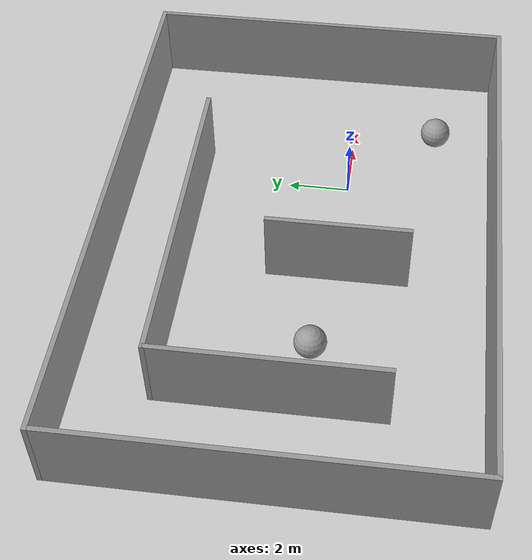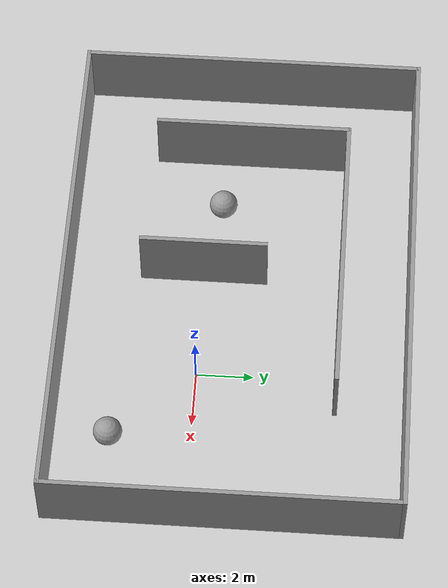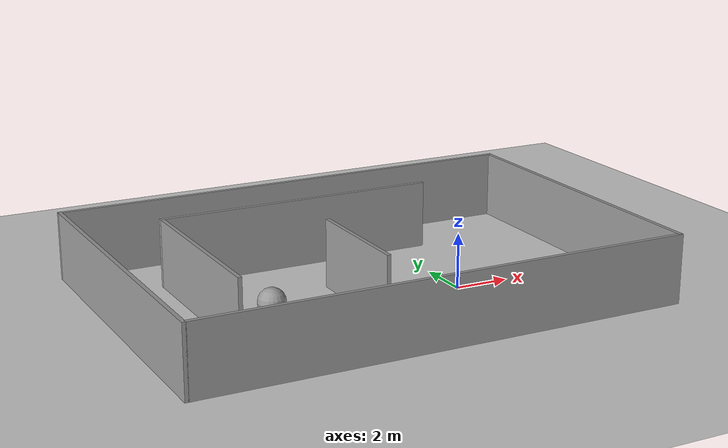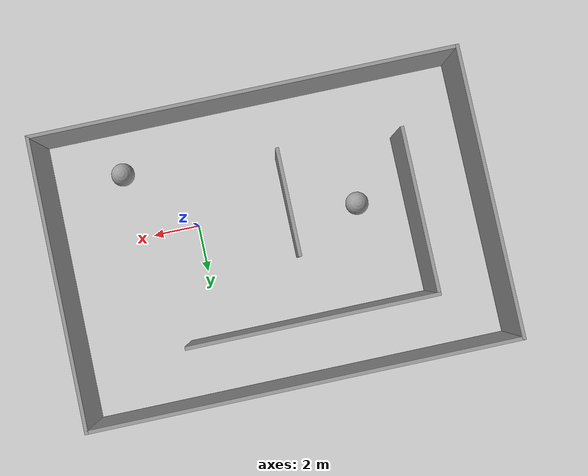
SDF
<sdf version="1.6">
 <world name="default">
  <model name="ground_plane">
   <static>1</static>
   <link name="link">
    <collision name="collision">
     <geometry><plane><normal>0 0 1</normal><size>100 100</size></plane></geometry>
     <surface>
      <contact><collide_bitmask>65535</collide_bitmask></contact>
      <friction><ode><mu>100</mu><mu2>50</mu2></ode></friction>
     </surface>
    </collision>
    <visual name="visual">
     <cast_shadows>0</cast_shadows>
     <geometry><plane><normal>0 0 1</normal><size>100 100</size></plane></geometry>
     <material>
      <script><uri>file://media/materials/scripts/gazebo.material</uri><name>Gazebo/Grey</name></script>
     </material>
    </visual>
   </link>
  </model>
  <light name="sun" type="directional">
   <pose>0 0 10 0 -0 0</pose>
   <diffuse>0.8 0.8 0.8 1</diffuse>
   <specular>0.2 0.2 0.2 1</specular>
   <attenuation>
    <range>1000</range>
    <constant>0.9</constant>
    <linear>0.01</linear>
    <quadratic>0.001</quadratic>
   </attenuation>
   <direction>-0.5 0.1 -0.9</direction>
  </light>
  <gravity>0 0 -9.8</gravity>
  <magnetic_field>6e-06 2.3e-05 -4.2e-05</magnetic_field>
  <atmosphere type="adiabatic"/>
  <physics name="default_physics" default="0" type="ode">
   <max_step_size>0.001</max_step_size>
   <real_time_factor>1</real_time_factor>
   <real_time_update_rate>1000</real_time_update_rate>
  </physics>
  <scene><ambient>0.4 0.4 0.4 1</ambient><background>0.7 0.7 0.7 1</background><shadows>1</shadows></scene>
  <audio><device>default</device></audio>
  <spherical_coordinates>
   <surface_model>EARTH_WGS84</surface_model>
   <latitude_deg>0</latitude_deg>
   <longitude_deg>0</longitude_deg>
   <elevation>0</elevation>
   <heading_deg>0</heading_deg>
  </spherical_coordinates>
  <model name="maze">
   <pose>-3.09636 1.26463 0 0 -0 0</pose>
   <link name="Wall_25">
    <collision name="Wall_25_Collision">
     <geometry><box><size>12.25 0.15 2.5</size></box></geometry>
     <pose>0 0 1.25 0 -0 0</pose>
    </collision>
    <visual name="Wall_25_Visual">
     <pose>0 0 1.25 0 -0 0</pose>
     <geometry><box><size>12.25 0.15 2.5</size></box></geometry>
     <material>
      <script><uri>file://media/materials/scripts/gazebo.material</uri><name>Gazebo/Grey</name></script>
      <ambient>1 1 1 1</ambient>
     </material>
     <meta><layer>0</layer></meta>
    </visual>
    <pose>-8.925 -0 0 0 -0 -1.5708</pose>
   </link>
   <link name="Wall_26">
    <collision name="Wall_26_Collision">
     <geometry><box><size>18 0.15 2.5</size></box></geometry>
     <pose>0 0 1.25 0 -0 0</pose>
    </collision>
    <visual name="Wall_26_Visual">
     <pose>0 0 1.25 0 -0 0</pose>
     <geometry><box><size>18 0.15 2.5</size></box></geometry>
     <material>
      <script><uri>file://media/materials/scripts/gazebo.material</uri><name>Gazebo/Grey</name></script>
      <ambient>1 1 1 1</ambient>
     </material>
     <meta><layer>0</layer></meta>
    </visual>
    <pose>-0 -6.05 0 0 -0 0</pose>
   </link>
   <link name="Wall_27">
    <collision name="Wall_27_Collision">
     <geometry><box><size>12.25 0.15 2.5</size></box></geometry>
     <pose>0 0 1.25 0 -0 0</pose>
    </collision>
    <visual name="Wall_27_Visual">
     <pose>0 0 1.25 0 -0 0</pose>
     <geometry><box><size>12.25 0.15 2.5</size></box></geometry>
     <material>
      <script><uri>file://media/materials/scripts/gazebo.material</uri><name>Gazebo/Grey</name></script>
      <ambient>1 1 1 1</ambient>
     </material>
     <meta><layer>0</layer></meta>
    </visual>
    <pose>8.925 -0 0 0 -0 1.5708</pose>
   </link>
   <link name="Wall_28">
    <collision name="Wall_28_Collision">
     <geometry><box><size>18 0.15 2.5</size></box></geometry>
     <pose>0 0 1.25 0 -0 0</pose>
    </collision>
    <visual name="Wall_28_Visual">
     <pose>0 0 1.25 0 -0 0</pose>
     <geometry><box><size>18 0.15 2.5</size></box></geometry>
     <material>
      <script><uri>file://media/materials/scripts/gazebo.material</uri><name>Gazebo/Grey</name></script>
      <ambient>1 1 1 1</ambient>
     </material>
     <meta><layer>0</layer></meta>
    </visual>
    <pose>-0 6.05 0 0 -0 3.14159</pose>
   </link>
   <link name="Wall_30">
    <collision name="Wall_30_Collision">
     <geometry><box><size>7 0.15 2.5</size></box></geometry>
     <pose>0 0 1.25 0 -0 0</pose>
    </collision>
    <visual name="Wall_30_Visual">
     <pose>0 0 1.25 0 -0 0</pose>
     <geometry><box><size>7 0.15 2.5</size></box></geometry>
     <material>
      <script><uri>file://media/materials/scripts/gazebo.material</uri><name>Gazebo/Grey</name></script>
      <ambient>1 1 1 1</ambient>
     </material>
     <meta><layer>0</layer></meta>
    </visual>
    <pose>-6.00516 0.197665 0 0 -0 -1.5708</pose>
   </link>
   <link name="Wall_40">
    <collision name="Wall_40_Collision">
     <geometry><box><size>10.5 0.15 2.5</size></box></geometry>
     <pose>0 0 1.25 0 -0 0</pose>
    </collision>
    <visual name="Wall_40_Visual">
     <pose>0 0 1.25 0 -0 0</pose>
     <geometry><box><size>10.5 0.15 2.5</size></box></geometry>
     <material>
      <script><uri>file://media/materials/scripts/gazebo.material</uri><name>Gazebo/Grey</name></script>
      <ambient>1 1 1 1</ambient>
     </material>
     <meta><layer>0</layer></meta>
    </visual>
    <pose>-0.830163 3.62267 0 0 -0 0</pose>
   </link>
   <link name="Wall_44">
    <collision name="Wall_44_Collision">
     <geometry><box><size>4.5 0.15 2.5</size></box></geometry>
     <pose>0 0 1.25 0 -0 0</pose>
    </collision>
    <visual name="Wall_44_Visual">
     <pose>0 0 1.25 0 -0 0</pose>
     <geometry><box><size>4.5 0.15 2.5</size></box></geometry>
     <material>
      <script><uri>file://media/materials/scripts/gazebo.material</uri><name>Gazebo/Grey</name></script>
      <ambient>1 1 1 1</ambient>
     </material>
     <meta><layer>0</layer></meta>
    </visual>
    <pose>-0.869063 -1.2611 0 0 -0 -1.5708</pose>
   </link>
   <static>1</static>
  </model>
  <model name="unit_sphere">
   <pose>2.70542 -2.82103 0.5 0 -0 0</pose>
   <link name="link">
    <inertial>
     <mass>1</mass>
     <inertia><ixx>0.1</ixx><ixy>0</ixy><ixz>0</ixz><iyy>0.1</iyy><iyz>0</iyz><izz>0.1</izz></inertia>
    </inertial>
    <collision name="collision"><geometry><sphere><radius>0.5</radius></sphere></geometry></collision>
    <visual name="visual">
     <geometry><sphere><radius>0.5</radius></sphere></geometry>
     <material>
      <script><name>Gazebo/Grey</name><uri>file://media/materials/scripts/gazebo.material</uri></script>
     </material>
    </visual>
   </link>
  </model>
  <model name="unit_sphere_0">
   <pose>-6.92124 0.502859 0.5 0 -0 0</pose>
   <link name="link">
    <inertial>
     <mass>1</mass>
     <inertia><ixx>0.1</ixx><ixy>0</ixy><ixz>0</ixz><iyy>0.1</iyy><iyz>0</iyz><izz>0.1</izz></inertia>
    </inertial>
    <collision name="collision"><geometry><sphere><radius>0.5</radius></sphere></geometry></collision>
    <visual name="visual">
     <geometry><sphere><radius>0.5</radius></sphere></geometry>
     <material>
      <script><name>Gazebo/Grey</name><uri>file://media/materials/scripts/gazebo.material</uri></script>
     </material>
    </visual>
   </link>
  </model>
 </world>
</sdf>
